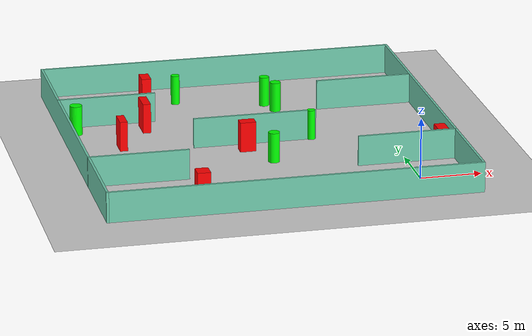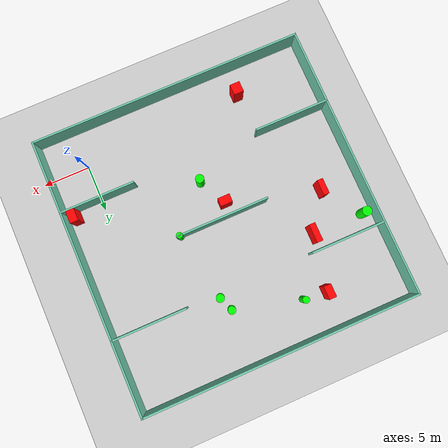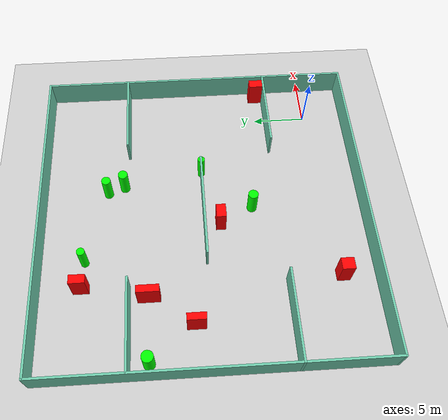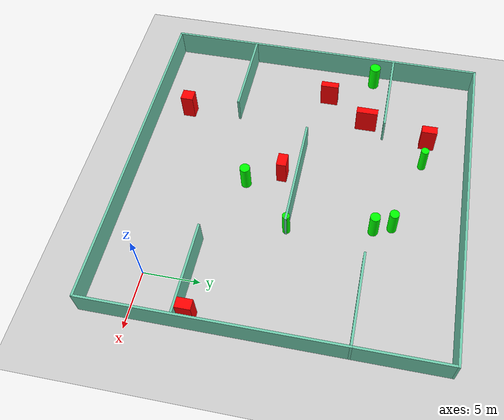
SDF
<sdf version="1.7">
 <world name="default">
  <light name="sun" type="directional">
   <pose>0 0 10 0 -0 0</pose>
   <diffuse>0.8 0.8 0.8 1</diffuse>
   <specular>0.2 0.2 0.2 1</specular>
   <attenuation>
    <range>1000</range>
    <constant>0.9</constant>
    <linear>0.01</linear>
    <quadratic>0.001</quadratic>
   </attenuation>
   <direction>-0.5 0.1 -0.9</direction>
   <spot><inner_angle>0</inner_angle><outer_angle>0</outer_angle><falloff>0</falloff></spot>
  </light>
  <model name="ground_plane">
   <static>1</static>
   <link name="link">
    <collision name="collision">
     <geometry><plane><normal>0 0 1</normal><size>100 100</size></plane></geometry>
     <surface>
      <contact><collide_bitmask>65535</collide_bitmask></contact>
      <friction><ode><mu>100</mu><mu2>50</mu2></ode></friction>
     </surface>
    </collision>
    <visual name="visual">
     <cast_shadows>0</cast_shadows>
     <geometry><plane><normal>0 0 1</normal><size>100 100</size></plane></geometry>
     <material>
      <script><uri>file://media/materials/scripts/gazebo.material</uri><name>Gazebo/Grey</name></script>
     </material>
    </visual>
   </link>
  </model>
  <gravity>0 0 -9.8</gravity>
  <magnetic_field>6e-06 2.3e-05 -4.2e-05</magnetic_field>
  <atmosphere type="adiabatic"/>
  <physics type="ode">
   <max_step_size>0.001</max_step_size>
   <real_time_factor>1</real_time_factor>
   <real_time_update_rate>1000</real_time_update_rate>
  </physics>
  <scene><ambient>0.4 0.4 0.4 1</ambient><background>0.7 0.7 0.7 1</background><shadows>1</shadows></scene>
  <spherical_coordinates>
   <surface_model>EARTH_WGS84</surface_model>
   <latitude_deg>0</latitude_deg>
   <longitude_deg>0</longitude_deg>
   <elevation>0</elevation>
   <heading_deg>0</heading_deg>
  </spherical_coordinates>
  <model name="my_base_walls">
   <link name="Wall_10">
    <collision name="Wall_10_Collision">
     <geometry><box><size>8.2 0.2 2.5</size></box></geometry>
     <pose>0 0 1.25 0 -0 0</pose>
    </collision>
    <visual name="Wall_10_Visual">
     <pose>0 0 1.25 0 -0 0</pose>
     <geometry><box><size>8.2 0.2 2.5</size></box></geometry>
     <material>
      <script><uri>file://media/materials/scripts/gazebo.material</uri><name>Gazebo/Grey</name></script>
      <ambient>0.435294 0.796078 0.67451 1</ambient>
     </material>
     <meta><layer>0</layer></meta>
    </visual>
    <pose>-11 -7 0 0 -0 0</pose>
   </link>
   <link name="Wall_12">
    <collision name="Wall_12_Collision">
     <geometry><box><size>8.2 0.2 2.5</size></box></geometry>
     <pose>0 0 1.25 0 -0 0</pose>
    </collision>
    <visual name="Wall_12_Visual">
     <pose>0 0 1.25 0 -0 0</pose>
     <geometry><box><size>8.2 0.2 2.5</size></box></geometry>
     <material>
      <script><uri>file://media/materials/scripts/gazebo.material</uri><name>Gazebo/Grey</name></script>
      <ambient>0.435294 0.796078 0.67451 1</ambient>
     </material>
     <meta><layer>0</layer></meta>
    </visual>
    <pose>-11 7 0 0 -0 0</pose>
   </link>
   <link name="Wall_14">
    <collision name="Wall_14_Collision">
     <geometry><box><size>8.2 0.2 2.5</size></box></geometry>
     <pose>0 0 1.25 0 -0 0</pose>
    </collision>
    <visual name="Wall_14_Visual">
     <pose>0 0 1.25 0 -0 0</pose>
     <geometry><box><size>8.2 0.2 2.5</size></box></geometry>
     <material>
      <script><uri>file://media/materials/scripts/gazebo.material</uri><name>Gazebo/Grey</name></script>
      <ambient>0.435294 0.796078 0.67451 1</ambient>
     </material>
     <meta><layer>0</layer></meta>
    </visual>
    <pose>11 7 0 0 -0 3.14159</pose>
   </link>
   <link name="Wall_16">
    <collision name="Wall_16_Collision">
     <geometry><box><size>10.2 0.2 2.5</size></box></geometry>
     <pose>0 0 1.25 0 -0 0</pose>
    </collision>
    <visual name="Wall_16_Visual">
     <pose>0 0 1.25 0 -0 0</pose>
     <geometry><box><size>10.2 0.2 2.5</size></box></geometry>
     <material>
      <script><uri>file://media/materials/scripts/gazebo.material</uri><name>Gazebo/Grey</name></script>
      <ambient>0.435294 0.796078 0.67451 1</ambient>
     </material>
     <meta><layer>0</layer></meta>
    </visual>
    <pose>0 0 0 0 -0 3.14159</pose>
   </link>
   <link name="Wall_2">
    <collision name="Wall_2_Collision">
     <geometry><box><size>30.2 0.2 2.5</size></box></geometry>
     <pose>0 0 1.25 0 -0 0</pose>
    </collision>
    <visual name="Wall_2_Visual">
     <pose>0 0 1.25 0 -0 0</pose>
     <geometry><box><size>30.2 0.2 2.5</size></box></geometry>
     <material>
      <script><uri>file://media/materials/scripts/gazebo.material</uri><name>Gazebo/Grey</name></script>
      <ambient>0.435294 0.796078 0.67451 1</ambient>
     </material>
     <meta><layer>0</layer></meta>
    </visual>
    <pose>0 -15 0 0 -0 3.14159</pose>
   </link>
   <link name="Wall_3">
    <collision name="Wall_3_Collision">
     <geometry><box><size>30.2 0.2 2.5</size></box></geometry>
     <pose>0 0 1.25 0 -0 0</pose>
    </collision>
    <visual name="Wall_3_Visual">
     <pose>0 0 1.25 0 -0 0</pose>
     <geometry><box><size>30.2 0.2 2.5</size></box></geometry>
     <material>
      <script><uri>file://media/materials/scripts/gazebo.material</uri><name>Gazebo/Grey</name></script>
      <ambient>0.435294 0.796078 0.67451 1</ambient>
     </material>
     <meta><layer>0</layer></meta>
    </visual>
    <pose>-15 0 0 0 -0 1.5708</pose>
   </link>
   <link name="Wall_4">
    <collision name="Wall_4_Collision">
     <geometry><box><size>30.2 0.2 2.5</size></box></geometry>
     <pose>0 0 1.25 0 -0 0</pose>
    </collision>
    <visual name="Wall_4_Visual">
     <pose>0 0 1.25 0 -0 0</pose>
     <geometry><box><size>30.2 0.2 2.5</size></box></geometry>
     <material>
      <script><uri>file://media/materials/scripts/gazebo.material</uri><name>Gazebo/Grey</name></script>
      <ambient>0.435294 0.796078 0.67451 1</ambient>
     </material>
     <meta><layer>0</layer></meta>
    </visual>
    <pose>0 15 0 0 -0 0</pose>
   </link>
   <link name="Wall_6">
    <collision name="Wall_6_Collision">
     <geometry><box><size>30.2 0.2 2.5</size></box></geometry>
     <pose>0 0 1.25 0 -0 0</pose>
    </collision>
    <visual name="Wall_6_Visual">
     <pose>0 0 1.25 0 -0 0</pose>
     <geometry><box><size>30.2 0.2 2.5</size></box></geometry>
     <material>
      <script><uri>file://media/materials/scripts/gazebo.material</uri><name>Gazebo/Grey</name></script>
      <ambient>0.435294 0.796078 0.67451 1</ambient>
     </material>
     <meta><layer>0</layer></meta>
    </visual>
    <pose>15 0 0 0 -0 1.5708</pose>
   </link>
   <link name="Wall_8">
    <collision name="Wall_8_Collision">
     <geometry><box><size>8.2 0.2 2.5</size></box></geometry>
     <pose>0 0 1.25 0 -0 0</pose>
    </collision>
    <visual name="Wall_8_Visual">
     <pose>0 0 1.25 0 -0 0</pose>
     <geometry><box><size>8.2 0.2 2.5</size></box></geometry>
     <material>
      <script><uri>file://media/materials/scripts/gazebo.material</uri><name>Gazebo/Grey</name></script>
      <ambient>0.435294 0.796078 0.67451 1</ambient>
     </material>
     <meta><layer>0</layer></meta>
    </visual>
    <pose>11 -7 0 0 -0 3.14159</pose>
   </link>
   <static>1</static>
   <pose>-11 11 0 0 -0 0</pose>
  </model>
  <model name="cylinder1">
   <static>1</static>
   <link name="link">
    <inertial>
     <mass>1</mass>
     <inertia><ixx>0.5</ixx><ixy>0</ixy><ixz>0</ixz><iyy>0.5</iyy><iyz>0</iyz><izz>1</izz></inertia>
    </inertial>
    <collision name="collision">
     <geometry><cylinder><radius>0.4190810105810445</radius><length>2.5</length></cylinder></geometry>
    </collision>
    <visual name="visual">
     <geometry><cylinder><radius>0.4190810105810445</radius><length>2.5</length></cylinder></geometry>
     <material>
      <ambient>0 1 0 1</ambient>
      <diffuse>0 1 0 1</diffuse>
      <specular>0.1 0.1 0.1 1</specular>
      <emissive>0 0 0 0</emissive>
     </material>
    </visual>
   </link>
   <pose>-8.160770280779351 19.98356130720712 1.25 0 0 0</pose>
  </model>
  <model name="cylinder2">
   <static>1</static>
   <link name="link">
    <inertial>
     <mass>1</mass>
     <inertia><ixx>0.5</ixx><ixy>0</ixy><ixz>0</ixz><iyy>0.5</iyy><iyz>0</iyz><izz>1</izz></inertia>
    </inertial>
    <collision name="collision">
     <geometry><cylinder><radius>0.3306330530810125</radius><length>2.5</length></cylinder></geometry>
    </collision>
    <visual name="visual">
     <geometry><cylinder><radius>0.3306330530810125</radius><length>2.5</length></cylinder></geometry>
     <material>
      <ambient>0 1 0 1</ambient>
      <diffuse>0 1 0 1</diffuse>
      <specular>0.1 0.1 0.1 1</specular>
      <emissive>0 0 0 0</emissive>
     </material>
    </visual>
   </link>
   <pose>-6.273323692840172 10.982514891631286 1.25 0 0 0</pose>
  </model>
  <model name="cylinder3">
   <static>1</static>
   <link name="link">
    <inertial>
     <mass>1</mass>
     <inertia><ixx>0.5</ixx><ixy>0</ixy><ixz>0</ixz><iyy>0.5</iyy><iyz>0</iyz><izz>1</izz></inertia>
    </inertial>
    <collision name="collision">
     <geometry><cylinder><radius>0.4598850762312885</radius><length>2.5</length></cylinder></geometry>
    </collision>
    <visual name="visual">
     <geometry><cylinder><radius>0.4598850762312885</radius><length>2.5</length></cylinder></geometry>
     <material>
      <ambient>0 1 0 1</ambient>
      <diffuse>0 1 0 1</diffuse>
      <specular>0.1 0.1 0.1 1</specular>
      <emissive>0 0 0 0</emissive>
     </material>
    </visual>
   </link>
   <pose>-10.458200443148488 6.419190018657973 1.25 0 0 0</pose>
  </model>
  <model name="cylinder4">
   <static>1</static>
   <link name="link">
    <inertial>
     <mass>1</mass>
     <inertia><ixx>0.5</ixx><ixy>0</ixy><ixz>0</ixz><iyy>0.5</iyy><iyz>0</iyz><izz>1</izz></inertia>
    </inertial>
    <collision name="collision">
     <geometry><cylinder><radius>0.3634212971581703</radius><length>2.5</length></cylinder></geometry>
    </collision>
    <visual name="visual">
     <geometry><cylinder><radius>0.3634212971581703</radius><length>2.5</length></cylinder></geometry>
     <material>
      <ambient>0 1 0 1</ambient>
      <diffuse>0 1 0 1</diffuse>
      <specular>0.1 0.1 0.1 1</specular>
      <emissive>0 0 0 0</emissive>
     </material>
    </visual>
   </link>
   <pose>-15.3676044414545 21.99247635397228 1.25 0 0 0</pose>
  </model>
  <model name="cylinder5">
   <static>1</static>
   <link name="link">
    <inertial>
     <mass>1</mass>
     <inertia><ixx>0.5</ixx><ixy>0</ixy><ixz>0</ixz><iyy>0.5</iyy><iyz>0</iyz><izz>1</izz></inertia>
    </inertial>
    <collision name="collision">
     <geometry><cylinder><radius>0.5110174871591242</radius><length>2.5</length></cylinder></geometry>
    </collision>
    <visual name="visual">
     <geometry><cylinder><radius>0.5110174871591242</radius><length>2.5</length></cylinder></geometry>
     <material>
      <ambient>0 1 0 1</ambient>
      <diffuse>0 1 0 1</diffuse>
      <specular>0.1 0.1 0.1 1</specular>
      <emissive>0 0 0 0</emissive>
     </material>
    </visual>
   </link>
   <pose>-24.834932655851308 16.319782403856994 1.25 0 0 0</pose>
  </model>
  <model name="cylinder6">
   <static>1</static>
   <link name="link">
    <inertial>
     <mass>1</mass>
     <inertia><ixx>0.5</ixx><ixy>0</ixy><ixz>0</ixz><iyy>0.5</iyy><iyz>0</iyz><izz>1</izz></inertia>
    </inertial>
    <collision name="collision">
     <geometry><cylinder><radius>0.4457777691266227</radius><length>2.5</length></cylinder></geometry>
    </collision>
    <visual name="visual">
     <geometry><cylinder><radius>0.4457777691266227</radius><length>2.5</length></cylinder></geometry>
     <material>
      <ambient>0 1 0 1</ambient>
      <diffuse>0 1 0 1</diffuse>
      <specular>0.1 0.1 0.1 1</specular>
      <emissive>0 0 0 0</emissive>
     </material>
    </visual>
   </link>
   <pose>-7.566167778558308 18.423796309726242 1.25 0 0 0</pose>
  </model>
  <model name="box1">
   <static>1</static>
   <link name="link">
    <inertial>
     <mass>1</mass>
     <inertia><ixx>0.083</ixx><ixy>0</ixy><ixz>0</ixz><iyy>0.083</iyy><iyz>0</iyz><izz>0.083</izz></inertia>
    </inertial>
    <collision name="collision">
     <geometry><box><size>0.6232375591033386 1.6785497712702513 2.5</size></box></geometry>
    </collision>
    <visual name="visual">
     <geometry><box><size>0.6232375591033386 1.6785497712702513 2.5</size></box></geometry>
     <material>
      <ambient>1 0 0 1</ambient>
      <diffuse>1 0 0 1</diffuse>
      <specular>0.1 0.1 0.1 1</specular>
      <emissive>0 0 0 0</emissive>
     </material>
    </visual>
    <sensor name="my_contact" type="contact">
     <contact><collision>box_collision</collision><topic>__default_topic__</topic></contact>
    </sensor>
   </link>
   <pose>-21.770850821768327 12.254696994168453 1.25 0 0 0</pose>
  </model>
  <model name="box2">
   <static>1</static>
   <link name="link">
    <inertial>
     <mass>1</mass>
     <inertia><ixx>0.083</ixx><ixy>0</ixy><ixz>0</ixz><iyy>0.083</iyy><iyz>0</iyz><izz>0.083</izz></inertia>
    </inertial>
    <collision name="collision">
     <geometry><box><size>0.7962287762078564 1.4164562082362318 2.5</size></box></geometry>
    </collision>
    <visual name="visual">
     <geometry><box><size>0.7962287762078564 1.4164562082362318 2.5</size></box></geometry>
     <material>
      <ambient>1 0 0 1</ambient>
      <diffuse>1 0 0 1</diffuse>
      <specular>0.1 0.1 0.1 1</specular>
      <emissive>0 0 0 0</emissive>
     </material>
    </visual>
    <sensor name="my_contact" type="contact">
     <contact><collision>box_collision</collision><topic>__default_topic__</topic></contact>
    </sensor>
   </link>
   <pose>-17.904745125516737 22.21659274509609 1.25 0 0 0</pose>
  </model>
  <model name="box3">
   <static>1</static>
   <link name="link">
    <inertial>
     <mass>1</mass>
     <inertia><ixx>0.083</ixx><ixy>0</ixy><ixz>0</ixz><iyy>0.083</iyy><iyz>0</iyz><izz>0.083</izz></inertia>
    </inertial>
    <collision name="collision">
     <geometry><box><size>0.8925180423444345 1.3404139858255948 2.5</size></box></geometry>
    </collision>
    <visual name="visual">
     <geometry><box><size>0.8925180423444345 1.3404139858255948 2.5</size></box></geometry>
     <material>
      <ambient>1 0 0 1</ambient>
      <diffuse>1 0 0 1</diffuse>
      <specular>0.1 0.1 0.1 1</specular>
      <emissive>0 0 0 0</emissive>
     </material>
    </visual>
    <sensor name="my_contact" type="contact">
     <contact><collision>box_collision</collision><topic>__default_topic__</topic></contact>
    </sensor>
   </link>
   <pose>3.014679126901388 4.770547379859653 1.25 0 0 0</pose>
  </model>
  <model name="box4">
   <static>1</static>
   <link name="link">
    <inertial>
     <mass>1</mass>
     <inertia><ixx>0.083</ixx><ixy>0</ixy><ixz>0</ixz><iyy>0.083</iyy><iyz>0</iyz><izz>0.083</izz></inertia>
    </inertial>
    <collision name="collision">
     <geometry><box><size>1.3040513012082666 0.8951413945904214 2.5</size></box></geometry>
    </collision>
    <visual name="visual">
     <geometry><box><size>1.3040513012082666 0.8951413945904214 2.5</size></box></geometry>
     <material>
      <ambient>1 0 0 1</ambient>
      <diffuse>1 0 0 1</diffuse>
      <specular>0.1 0.1 0.1 1</specular>
      <emissive>0 0 0 0</emissive>
     </material>
    </visual>
    <sensor name="my_contact" type="contact">
     <contact><collision>box_collision</collision><topic>__default_topic__</topic></contact>
    </sensor>
   </link>
   <pose>-11.978955218279067 9.504463835873814 1.25 0 0 0</pose>
  </model>
  <model name="box5">
   <static>1</static>
   <link name="link">
    <inertial>
     <mass>1</mass>
     <inertia><ixx>0.083</ixx><ixy>0</ixy><ixz>0</ixz><iyy>0.083</iyy><iyz>0</iyz><izz>0.083</izz></inertia>
    </inertial>
    <collision name="collision">
     <geometry><box><size>1.0729158490830948 1.1582083094698763 2.5</size></box></geometry>
    </collision>
    <visual name="visual">
     <geometry><box><size>1.0729158490830948 1.1582083094698763 2.5</size></box></geometry>
     <material>
      <ambient>1 0 0 1</ambient>
      <diffuse>1 0 0 1</diffuse>
      <specular>0.1 0.1 0.1 1</specular>
      <emissive>0 0 0 0</emissive>
     </material>
    </visual>
    <sensor name="my_contact" type="contact">
     <contact><collision>box_collision</collision><topic>__default_topic__</topic></contact>
    </sensor>
   </link>
   <pose>-17.872682463654925 -0.9600769412586287 1.25 0 0 0</pose>
  </model>
  <model name="box6">
   <static>1</static>
   <link name="link">
    <inertial>
     <mass>1</mass>
     <inertia><ixx>0.083</ixx><ixy>0</ixy><ixz>0</ixz><iyy>0.083</iyy><iyz>0</iyz><izz>0.083</izz></inertia>
    </inertial>
    <collision name="collision">
     <geometry><box><size>0.6559043415305361 2.0055766793083745 2.5</size></box></geometry>
    </collision>
    <visual name="visual">
     <geometry><box><size>0.6559043415305361 2.0055766793083745 2.5</size></box></geometry>
     <material>
      <ambient>1 0 0 1</ambient>
      <diffuse>1 0 0 1</diffuse>
      <specular>0.1 0.1 0.1 1</specular>
      <emissive>0 0 0 0</emissive>
     </material>
    </visual>
    <sensor name="my_contact" type="contact">
     <contact><collision>box_collision</collision><topic>__default_topic__</topic></contact>
    </sensor>
   </link>
   <pose>-19.107168713258403 16.262291535997974 1.25 0 0 0</pose>
  </model>
 </world>
</sdf>
